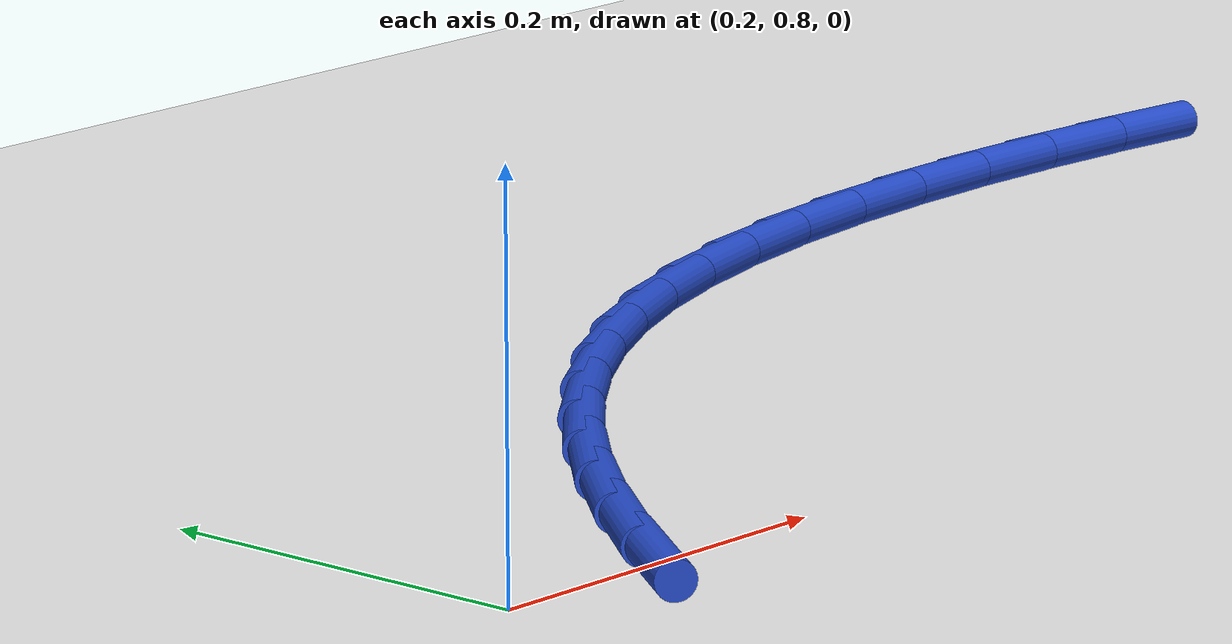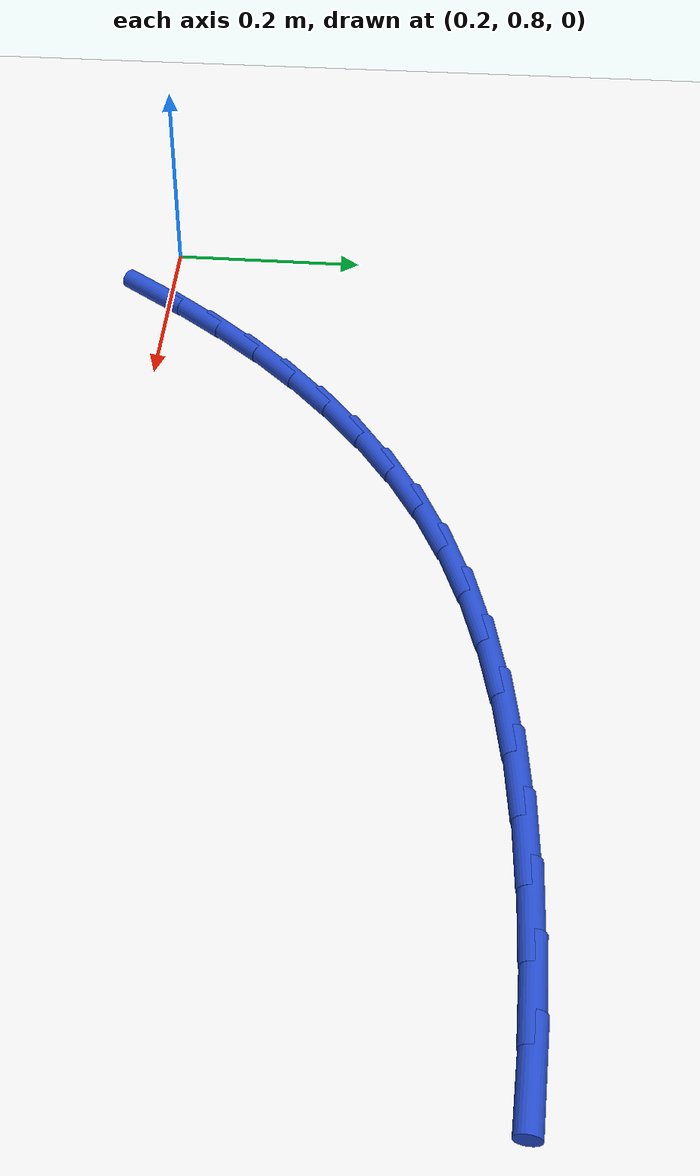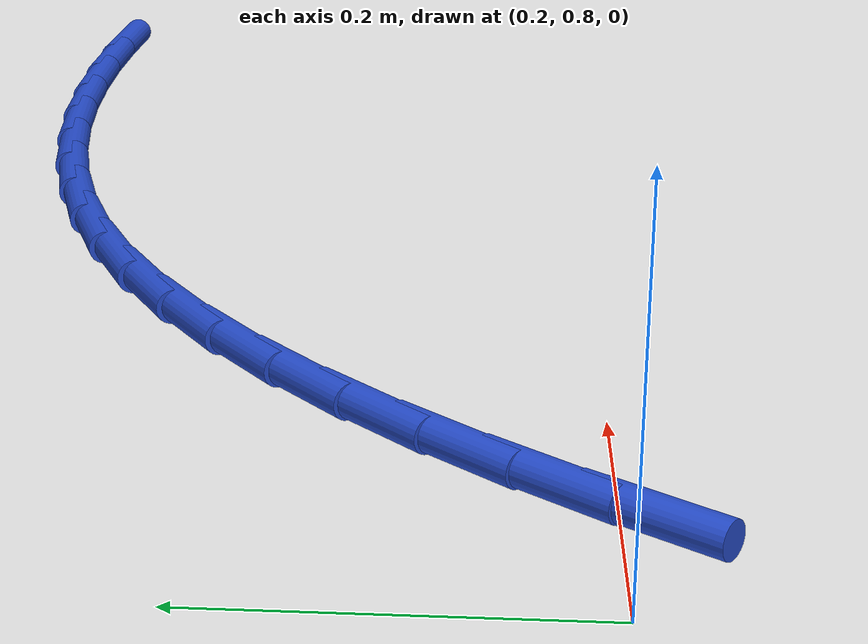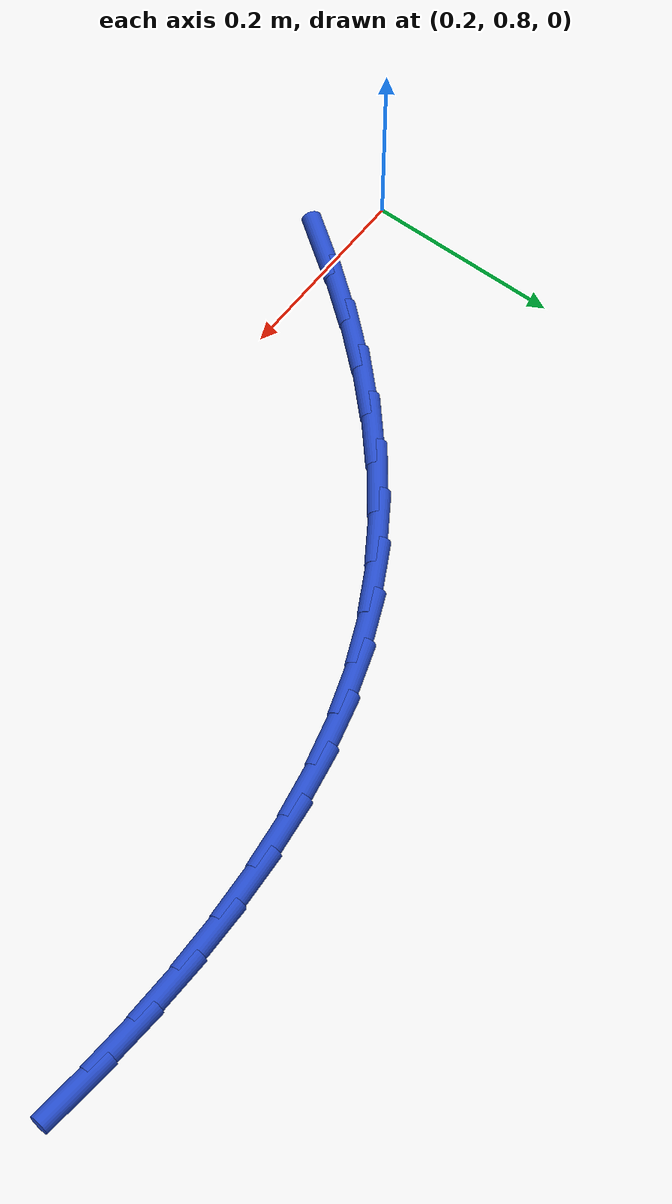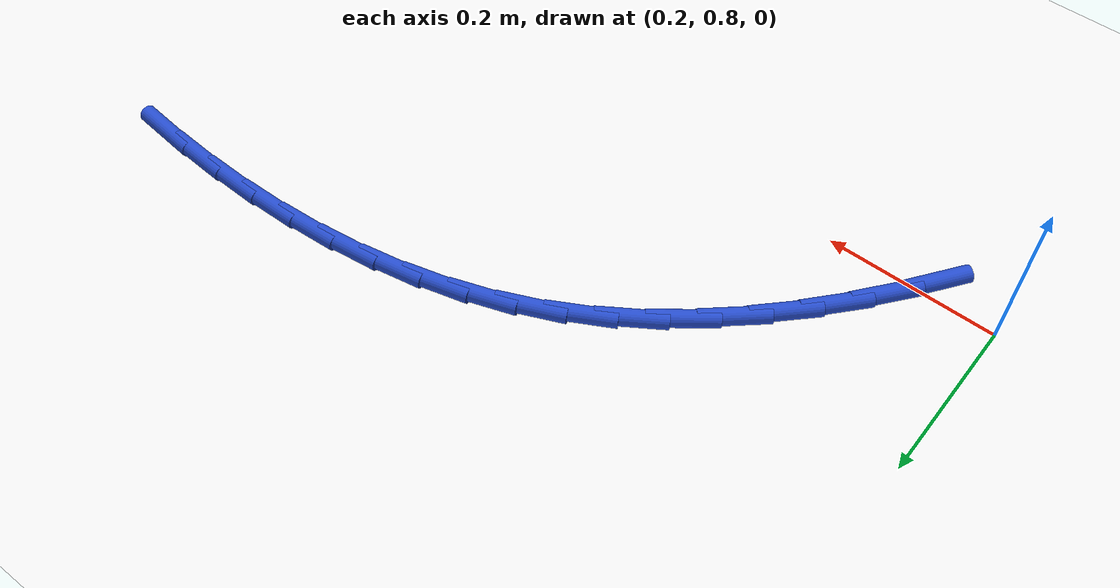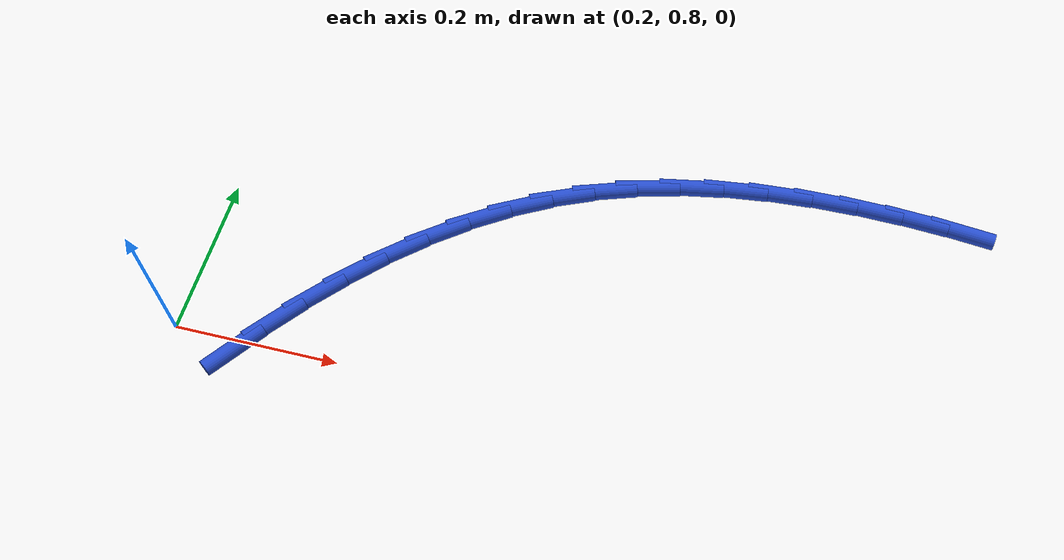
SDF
<sdf version="1.6">
 <world name="default">
  <model name="ground_plane">
   <static>1</static>
   <link name="link">
    <collision name="collision">
     <geometry><plane><normal>0 0 1</normal><size>100 100</size></plane></geometry>
     <surface><friction><ode><mu>100</mu><mu2>50</mu2></ode></friction></surface>
    </collision>
    <visual name="visual">
     <cast_shadows>0</cast_shadows>
     <geometry><plane><normal>0 0 1</normal><size>100 100</size></plane></geometry>
     <material>
      <script><uri>file://media/materials/scripts/gazebo.material</uri><name>Gazebo/WhiteGlow</name></script>
     </material>
    </visual>
   </link>
  </model>
  <model name="line">
   <link name="link_15">
    <pose>0.2805647929377344 0.7852740019273863 0.01 0 1.57 0.9473919513212403</pose>
    <collision name="collision">
     <geometry><cylinder><radius>0.01</radius><length>0.08</length></cylinder></geometry>
    </collision>
    <visual name="visual">
     <material>
      <script><name>Gazebo/Blue</name><uri>file://media/materials/scripts/gazebo.material</uri></script>
     </material>
     <geometry><cylinder><radius>0.01</radius><length>0.08</length></cylinder></geometry>
    </visual>
   </link>
   <link name="link_16">
    <pose>0.3136950990942987 0.8313484035661524 0.01 0 1.57 0.8989687052836557</pose>
    <collision name="collision">
     <geometry><cylinder><radius>0.01</radius><length>0.08</length></cylinder></geometry>
    </collision>
    <visual name="visual">
     <material>
      <script><name>Gazebo/Blue</name><uri>file://media/materials/scripts/gazebo.material</uri></script>
     </material>
     <geometry><cylinder><radius>0.01</radius><length>0.08</length></cylinder></geometry>
    </visual>
   </link>
   <link name="link_17">
    <pose>0.3486412772084759 0.8752929671332184 0.01 0 1.57 0.8457653338594834</pose>
    <collision name="collision">
     <geometry><cylinder><radius>0.01</radius><length>0.08</length></cylinder></geometry>
    </collision>
    <visual name="visual">
     <material>
      <script><name>Gazebo/Blue</name><uri>file://media/materials/scripts/gazebo.material</uri></script>
     </material>
     <geometry><cylinder><radius>0.01</radius><length>0.08</length></cylinder></geometry>
    </visual>
   </link>
   <link name="link_18">
    <pose>0.38544383505623697 0.9168304442823051 0.01 0 1.57 0.7873800034721977</pose>
    <collision name="collision">
     <geometry><cylinder><radius>0.01</radius><length>0.08</length></cylinder></geometry>
    </collision>
    <visual name="visual">
     <material>
      <script><name>Gazebo/Blue</name><uri>file://media/materials/scripts/gazebo.material</uri></script>
     </material>
     <geometry><cylinder><radius>0.01</radius><length>0.08</length></cylinder></geometry>
    </visual>
   </link>
   <link name="link_19">
    <pose>0.42414328041355287 0.9556835866671337 0.01 0 1.57 0.7234706470306219</pose>
    <collision name="collision">
     <geometry><cylinder><radius>0.01</radius><length>0.08</length></cylinder></geometry>
    </collision>
    <visual name="visual">
     <material>
      <script><name>Gazebo/Blue</name><uri>file://media/materials/scripts/gazebo.material</uri></script>
     </material>
     <geometry><cylinder><radius>0.01</radius><length>0.08</length></cylinder></geometry>
    </visual>
   </link>
   <link name="link_20">
    <pose>0.46478012105639477 0.9915751459414249 0.01 0 1.57 0.6538081331336639</pose>
    <collision name="collision">
     <geometry><cylinder><radius>0.01</radius><length>0.08</length></cylinder></geometry>
    </collision>
    <visual name="visual">
     <material>
      <script><name>Gazebo/Blue</name><uri>file://media/materials/scripts/gazebo.material</uri></script>
     </material>
     <geometry><cylinder><radius>0.01</radius><length>0.08</length></cylinder></geometry>
    </visual>
   </link>
   <link name="link_21">
    <pose>0.5073948647607336 1.0242278737588995 0.01 0 1.57 0.5783430279348372</pose>
    <collision name="collision">
     <geometry><cylinder><radius>0.01</radius><length>0.08</length></cylinder></geometry>
    </collision>
    <visual name="visual">
     <material>
      <script><name>Gazebo/Blue</name><uri>file://media/materials/scripts/gazebo.material</uri></script>
     </material>
     <geometry><cylinder><radius>0.01</radius><length>0.08</length></cylinder></geometry>
    </visual>
   </link>
   <link name="link_22">
    <pose>0.55202801930254 1.0533645217732777 0.01 0 1.57 0.4972797623357295</pose>
    <collision name="collision">
     <geometry><cylinder><radius>0.01</radius><length>0.08</length></cylinder></geometry>
    </collision>
    <visual name="visual">
     <material>
      <script><name>Gazebo/Blue</name><uri>file://media/materials/scripts/gazebo.material</uri></script>
     </material>
     <geometry><cylinder><radius>0.01</radius><length>0.08</length></cylinder></geometry>
    </visual>
   </link>
   <link name="link_23">
    <pose>0.5987200924577853 1.0787078416382814 0.01 0 1.57 0.4114415498475011</pose>
    <collision name="collision">
     <geometry><cylinder><radius>0.01</radius><length>0.08</length></cylinder></geometry>
    </collision>
    <visual name="visual">
     <material>
      <script><name>Gazebo/Blue</name><uri>file://media/materials/scripts/gazebo.material</uri></script>
     </material>
     <geometry><cylinder><radius>0.01</radius><length>0.08</length></cylinder></geometry>
    </visual>
   </link>
   <link name="link_24">
    <pose>0.6475032805815015 1.0999941977198155 0.01 0 1.57 0.32746401152332916</pose>
    <collision name="collision">
     <geometry><cylinder><radius>0.01</radius><length>0.08</length></cylinder></geometry>
    </collision>
    <visual name="visual">
     <material>
      <script><name>Gazebo/Blue</name><uri>file://media/materials/scripts/gazebo.material</uri></script>
     </material>
     <geometry><cylinder><radius>0.01</radius><length>0.08</length></cylinder></geometry>
    </visual>
   </link>
   <link name="link_25">
    <pose>0.6982444898250625 1.1172306719886038 0.01 0 1.57 0.2510609065994759</pose>
    <collision name="collision">
     <geometry><cylinder><radius>0.01</radius><length>0.08</length></cylinder></geometry>
    </collision>
    <visual name="visual">
     <material>
      <script><name>Gazebo/Blue</name><uri>file://media/materials/scripts/gazebo.material</uri></script>
     </material>
     <geometry><cylinder><radius>0.01</radius><length>0.08</length></cylinder></geometry>
    </visual>
   </link>
   <link name="link_26">
    <pose>0.7506585474194624 1.1306734261560811 0.01 0 1.57 0.1822522546144268</pose>
    <collision name="collision">
     <geometry><cylinder><radius>0.01</radius><length>0.08</length></cylinder></geometry>
    </collision>
    <visual name="visual">
     <material>
      <script><name>Gazebo/Blue</name><uri>file://media/materials/scripts/gazebo.material</uri></script>
     </material>
     <geometry><cylinder><radius>0.01</radius><length>0.08</length></cylinder></geometry>
    </visual>
   </link>
   <link name="link_27">
    <pose>0.8044546171806215 1.1405878976568014 0.01 0 1.57 0.12059901192361307</pose>
    <collision name="collision">
     <geometry><cylinder><radius>0.01</radius><length>0.08</length></cylinder></geometry>
    </collision>
    <visual name="visual">
     <material>
      <script><name>Gazebo/Blue</name><uri>file://media/materials/scripts/gazebo.material</uri></script>
     </material>
     <geometry><cylinder><radius>0.01</radius><length>0.08</length></cylinder></geometry>
    </visual>
   </link>
   <link name="link_28">
    <pose>0.8593418629244614 1.147239523925319 0.01 0 1.57 0.06552604040377356</pose>
    <collision name="collision">
     <geometry><cylinder><radius>0.01</radius><length>0.08</length></cylinder></geometry>
    </collision>
    <visual name="visual">
     <material>
      <script><name>Gazebo/Blue</name><uri>file://media/materials/scripts/gazebo.material</uri></script>
     </material>
     <geometry><cylinder><radius>0.01</radius><length>0.08</length></cylinder></geometry>
    </visual>
   </link>
   <link name="link_29">
    <pose>0.9150294484669029 1.1508937423961896 0.01 0 1.57 0.01640948564834614</pose>
    <collision name="collision">
     <geometry><cylinder><radius>0.01</radius><length>0.08</length></cylinder></geometry>
    </collision>
    <visual name="visual">
     <material>
      <script><name>Gazebo/Blue</name><uri>file://media/materials/scripts/gazebo.material</uri></script>
     </material>
     <geometry><cylinder><radius>0.01</radius><length>0.08</length></cylinder></geometry>
    </visual>
   </link>
   <link name="link_30">
    <pose>0.9712265376238666 1.1518159905039664 0.01 0 1.57 -0.02736645536917747</pose>
    <collision name="collision">
     <geometry><cylinder><radius>0.01</radius><length>0.08</length></cylinder></geometry>
    </collision>
    <visual name="visual">
     <material>
      <script><name>Gazebo/Blue</name><uri>file://media/materials/scripts/gazebo.material</uri></script>
     </material>
     <geometry><cylinder><radius>0.01</radius><length>0.08</length></cylinder></geometry>
    </visual>
   </link>
   <link name="link_31">
    <pose>1.0276422942112735 1.1502717056832044 0.01 0 1.57 -0.06637628809612008</pose>
    <collision name="collision">
     <geometry><cylinder><radius>0.01</radius><length>0.08</length></cylinder></geometry>
    </collision>
    <visual name="visual">
     <material>
      <script><name>Gazebo/Blue</name><uri>file://media/materials/scripts/gazebo.material</uri></script>
     </material>
     <geometry><cylinder><radius>0.01</radius><length>0.08</length></cylinder></geometry>
    </visual>
   </link>
   <link name="link_32">
    <pose>1.0839858820450448 1.1465263253684583 0.01 0 1.57 -0.10113606101652392</pose>
    <collision name="collision">
     <geometry><cylinder><radius>0.01</radius><length>0.08</length></cylinder></geometry>
    </collision>
    <visual name="visual">
     <material>
      <script><name>Gazebo/Blue</name><uri>file://media/materials/scripts/gazebo.material</uri></script>
     </material>
     <geometry><cylinder><radius>0.01</radius><length>0.08</length></cylinder></geometry>
    </visual>
   </link>
  </model>
 </world>
</sdf>
